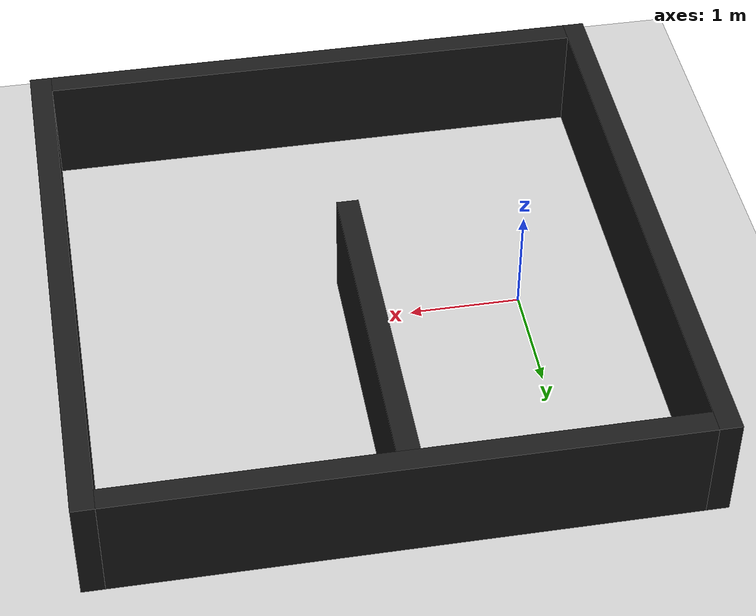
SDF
<?xml version="1.0" ?>
<sdf version="1.8">

  <!--
    Определяем мир (world) под названием "Room_613".
    Внутри указываем параметры физики, плагины для симуляции, освещение (sun) и объекты (models).
  -->
  <world name="Room_613">

    <physics name="1ms" type="ignored">
      <max_step_size>0.001</max_step_size>
      <real_time_factor>1.0</real_time_factor>
    </physics>

    <plugin filename="gz-sim-physics-system" name="gz::sim::systems::Physics"/>
    <plugin filename="gz-sim-user-commands-system" name="gz::sim::systems::UserCommands"/>
    <plugin filename="gz-sim-scene-broadcaster-system" name="gz::sim::systems::SceneBroadcaster"/>

    <!-- подклюяение плагина сенсоров (в т.ч. лидара) -->
    <plugin
      filename="gz-sim-sensors-system"
      name="gz::sim::systems::Sensors">
      <render_engine>ogre2</render_engine>
    </plugin>

    <!--
      Настраиваем источник света "sun" (солнечный свет) с заданным направлением,
      интенсивностью (diffuse, specular) и другими параметрами.
    -->
    <light type="directional" name="sun">
      <cast_shadows>true</cast_shadows>
      <pose>0 0 10 0 0 0</pose>
      <diffuse>0.8 0.8 0.8 1</diffuse>
      <specular>0.2 0.2 0.2 1</specular>
      <attenuation>
        <range>1000</range>
        <constant>0.9</constant>
        <linear>0.01</linear>
        <quadratic>0.001</quadratic>
      </attenuation>
      <direction>-0.5 0.1 -0.9</direction>
    </light>

    <!--
      Создаём "землю" (ground_plane) — большая плоскость для пола.
      static=true означает, что объект не участвует в движении, он статичен.
    -->
    <model name="ground_plane">
      <static>true</static>
      <link name="link">
        <collision name="collision">
          <geometry>
            <plane>
              <normal>0 0 1</normal>
            </plane>
          </geometry>
        </collision>
        <visual name="visual">
          <geometry>
            <plane>
              <normal>0 0 1</normal>
              <size>100 100</size>
            </plane>
          </geometry>
          <material>
            <ambient>0.8 0.8 0.8 1</ambient>
            <diffuse>0.8 0.8 0.8 1</diffuse>
            <specular>0.8 0.8 0.8 1</specular>
          </material>
        </visual>
      </link>
    </model>

    <!--
      boundaries - границы "комнаты", в которой находится робот
    -->
    <model name="boundaries">
        <pose>1.5 0 0 0 0 0</pose>
        <static>true</static>
        <link name="left_wall">
            <pose>0 -2.6 0.5 0 0 0</pose>
            <visual name="visual">
                <geometry>
                <box>
                    <size>5 0.2 1</size>
                </box>
                </geometry>
                <material>
                <ambient>0.1 0.1 0.1 1</ambient>
                <diffuse>0.1 0.1 0.1 1</diffuse>
                <specular>0.1 0.1 0.1 1</specular>
                </material>
            </visual>
            <collision name="collision">
                <geometry>
                <box>
                    <size>5 0.2 1</size>
                </box>
                </geometry>
            </collision>
        </link>

        <link name="right_wall">
            <pose>0 2.6 0.5 0 0 0</pose>
            <visual name="visual">
                <geometry>
                <box>
                    <size>5 0.2 1</size>
                </box>
                </geometry>
                <material>
                <ambient>0.1 0.1 0.1 1</ambient>
                <diffuse>0.1 0.1 0.1 1</diffuse>
                <specular>0.1 0.1 0.1 1</specular>
                </material>
            </visual>
            <collision name="collision">
                <geometry>
                <box>
                    <size>5 0.2 1</size>
                </box>
                </geometry>
            </collision>
        </link>

        <link name="front_wall">
        <pose>2.6 0 0.5 0 0 1.5707963267948966192313216916398</pose>
        <visual name="visual">
            <geometry>
            <box>
                <size>5.4 0.2 1</size>
            </box>
            </geometry>
            <material>
            <ambient>0.1 0.1 0.1 1</ambient>
            <diffuse>0.1 0.1 0.1 1</diffuse>
            <specular>0.1 0.1 0.1 1</specular>
            </material>
        </visual>
        <collision name="collision">
            <geometry>
            <box>
                <size>5.4 0.2 1</size>
            </box>
            </geometry>
        </collision>
        </link>

    <link name="back_wall">
        <pose>-2.6 0 0.5 0 0 1.5707963267948966192313216916398</pose>
        <visual name="visual">
            <geometry>
            <box>
                <size>5.4 0.2 1</size>
            </box>
            </geometry>
            <material>
            <ambient>0.1 0.1 0.1 1</ambient>
            <diffuse>0.1 0.1 0.1 1</diffuse>
            <specular>0.1 0.1 0.1 1</specular>
            </material>
        </visual>
        <collision name="collision">
            <geometry>
            <box>
                <size>5.4 0.2 1</size>
            </box>
            </geometry>
        </collision>
        </link>

        <link name="central_wall">
        <pose>0 1 0.5 0 0 1.5707963267948966192313216916398</pose>
            <visual name="visual">
            <geometry>
                <box>
                <size>3 0.2 1</size>
                </box>
            </geometry>
            <material>
                <ambient>0.1 0.1 0.1 1</ambient>
                <diffuse>0.1 0.1 0.1 1</diffuse>
                <specular>0.1 0.1 0.1 1</specular>
            </material>
            </visual>
            <collision name="collision">
            <geometry>
                <box>
                <size>3 0.2 1</size>
                </box>
            </geometry>
            </collision>
        </link>

    </model>

  </world>
</sdf>
